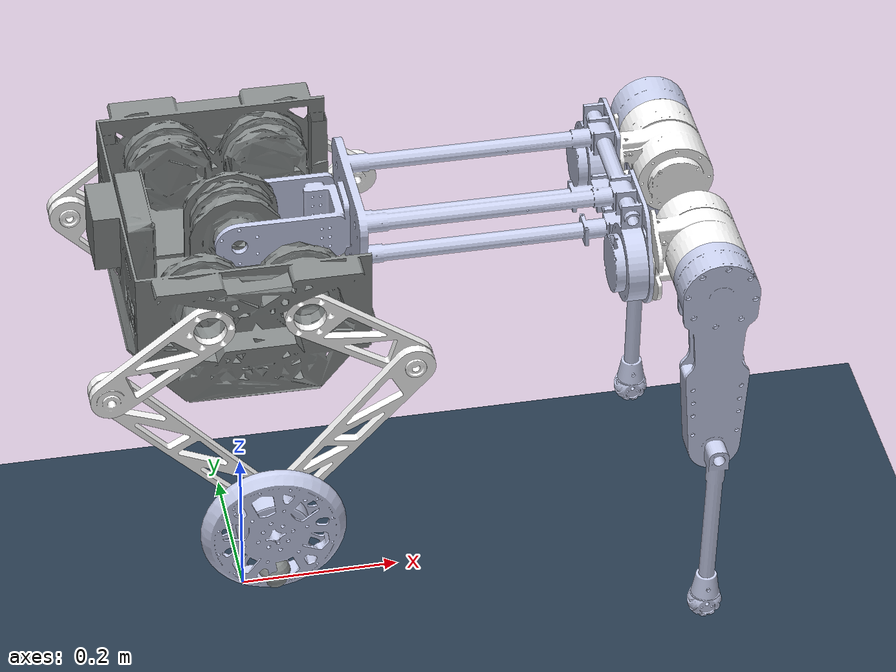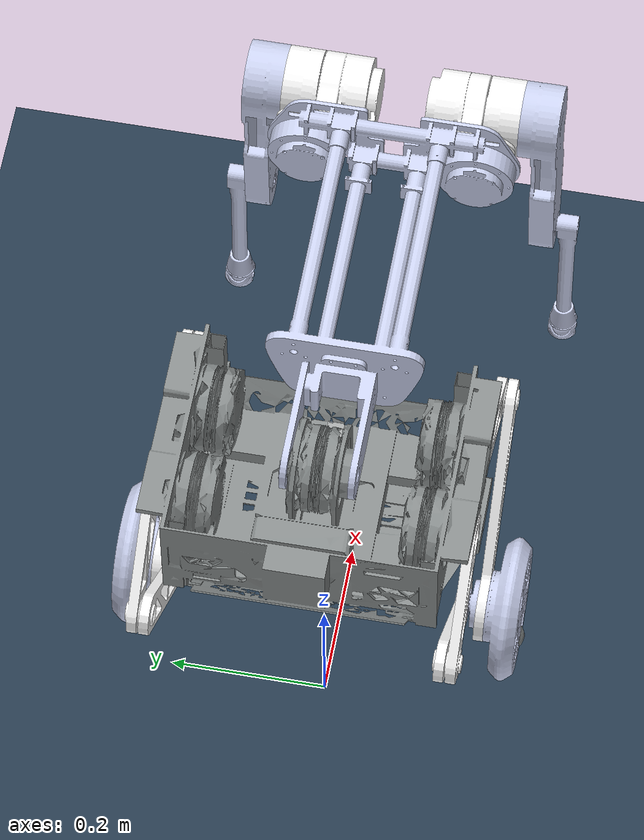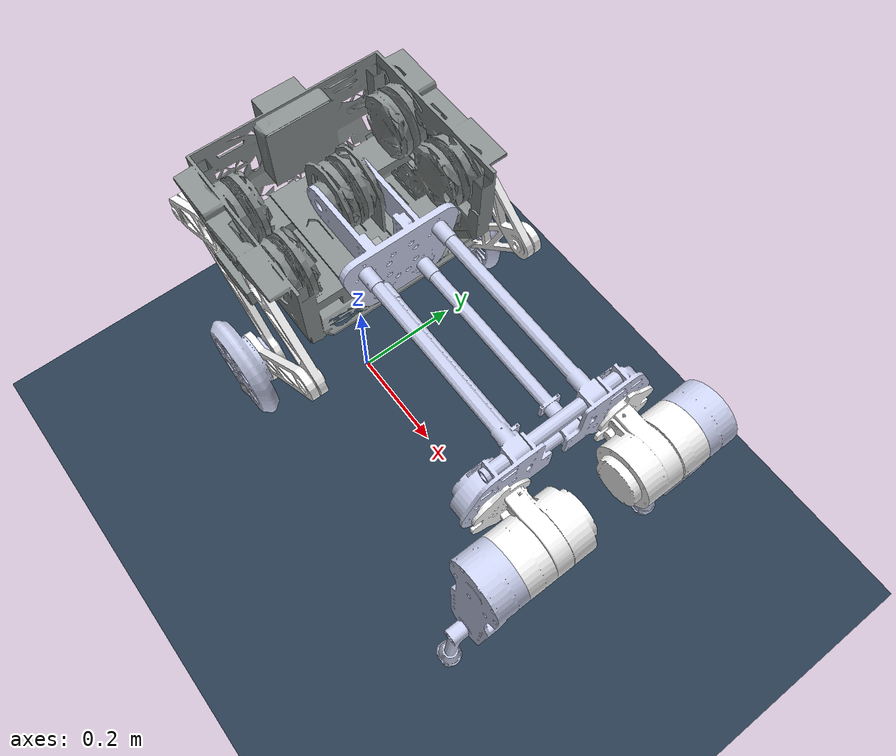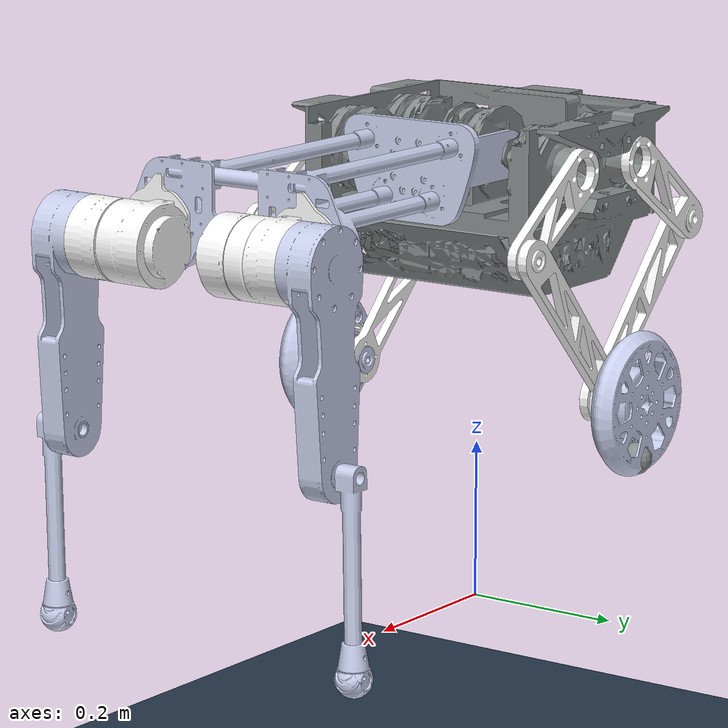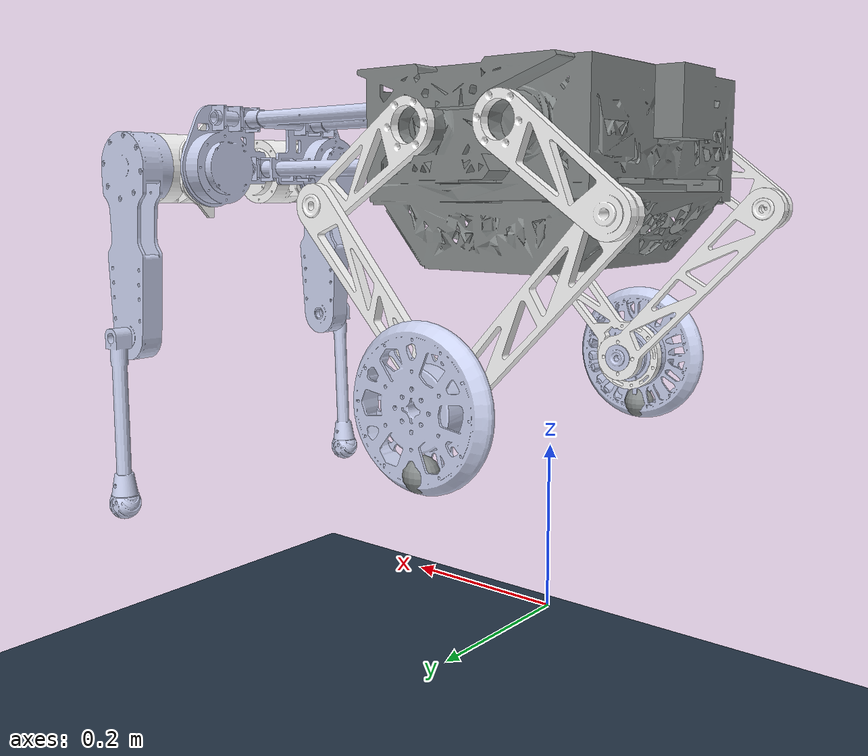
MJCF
<mujoco model="Wheel_legged_description">
  <compiler angle="radian" meshdir="../meshes_display/" autolimits="true"/>
    <size njmax="500" nconmax="100" />
    <option timestep="0.001" iterations="50" solver="PGS" gravity="0 0 -9.81" noslip_iterations="20">
    </option>
    <default>
      <geom contype="1" conaffinity="1" condim="1" solref="0.005 1"/>
    </default>
    <visual>
      <quality shadowsize="4096"/>
      <global realtime="1"/>
    </visual>
    <asset>
      <texture type="skybox" builtin="gradient" rgb1="0.3 0.5 0.7" rgb2="0 0 0" width="512" height="512"/>
      <texture name="texplane" type="2d" builtin="checker" rgb1=".2 .3 .4" rgb2=".1 0.15 0.2"
        width="512" height="512" mark="cross" markrgb=".8 .8 .8"/>
      <texture name="texplane2" type="2d" builtin="checker" rgb1="1 0.3137 0.1843" rgb2="0.0 0.30196 0.38039"
        width="512" height="512" mark="cross" markrgb=".8 .8 .8"/>

      <material name="matplane" reflectance="0." texture="texplane" texrepeat="1 1" texuniform="true"/>
      <material name="matplane2" reflectance="0.1" texture="texplane2" texrepeat="1 1" texuniform="true"/>
      <material name='obstacle'  rgba='0.9 0.6 0.2 1'/>
      <material name='visualgeom'  rgba='0.5 0.9 0.2 1'/>
      <material name='visualgeom2'  rgba='0.5 0.9 0.2 1'/>
    	<mesh name="base_link" file="base_link.STL"/>
   	  <mesh name="waist_Link" file="waist_Link.STL"/>
    	<mesh name="Labad_Link" file="Labad_Link.STL"/>
    	<mesh name="Lhip_Link" file="Lhip_Link.STL"/>
    	<mesh name="Lknee_Link" file="Lknee_Link.STL"/>
    	<mesh name="Rabad_Link" file="Rabad_Link.STL"/>
    	<mesh name="Rhip_Link" file="Rhip_Link.STL"/>
    	<mesh name="Rknee_Link" file="Rknee_Link.STL"/>
    	<mesh name="LF_hip_Link" file="LF_hip_Link.STL"/>
    	<mesh name="LF_knee_Link" file="LF_knee_Link.STL"/>
    	<mesh name="Lwheel_Link" file="Lwheel_Link.STL"/>
    	<mesh name="LB_hip_Link" file="LB_hip_Link.STL"/>
    	<mesh name="LB_knee_Link" file="LB_knee_Link.STL"/>
    	<mesh name="RF_hip_Link" file="RF_hip_Link.STL"/>
    	<mesh name="RF_knee_Link" file="RF_knee_Link.STL"/>
    	<mesh name="Rwheel_Link" file="Rwheel_Link.STL"/>
    	<mesh name="RB_hip_Link" file="RB_hip_Link.STL"/>
    	<mesh name="RB_knee_Link" file="RB_knee_Link.STL"/>
  </asset>
  <worldbody>
    <light directional="false" cutoff="60" exponent="1" diffuse=".5 .5 .5" specular=".1 .1 .1" pos="0.5 0.1 0.8" dir="-0.5 -0.1 -0.8"/>
    <geom name="ground" type="plane" size="0 0 1" pos="0.01 0 -0.285" quat="1 0 0 0" material="matplane" condim="3" contype="15" conaffinity='0' friction="1.2 0.8 0.8"/>
    <body name="base_link" pos="0 0 0.5">
      <freejoint/>
      <inertial pos="0.1015927041891579 0.00071509554661818 0.0289337663641155" quat="1 0 0 0" mass="16.8740" diaginertia="0.29867 0.48858 0.65671 " />
      <geom type="mesh" contype="0" conaffinity="0" group="1" density="0" rgba="0.529412 0.54902 0.54902 1" mesh="base_link"/>
      <geom size="0.14 0.165 0.1065" pos="0 0 0.02" type="box" rgba="0.529412 0.54902 0.54902 0"/>
      <geom size="0.0075 0.0075 0.002" type="box" contype="0" conaffinity="0" group="1" density="0"/>
      <geom pos="0.000107024 0.00535894 0.0709154" type="mesh" contype="0" conaffinity="0" group="1" density="0" rgba="0.792157 0.819608 0.933333 1" mesh="waist_Link"/>
      <geom size="0.28 0.12 0.05" pos="0.280107 0.00535894 0.0709154" type="box" rgba="0.792157 0.819608 0.933333 0"/>
      <site name="base_imu" pos="0.08 0 0.02" type="box" size="0.01 0.01 0.01" rgba="0.8 0.8 0.8 0.5"/>
      <body name="LF_hip_Link" pos="0.060111 0.191429 0.0692325" gravcomp="0">
        <inertial pos="0.0615859 -0.000613058 -0.0390776" quat="0.32077 0.657207 0.586274 0.348524" mass="0.177077" diaginertia="0.00070071 0.000647868 6.14221e-05"/>
        <joint name="Joint_LFhip" pos="0 0 0" axis="0 1 0" limited="true" range="-0.93 0.45" damping="0.01" frictionloss="0.01" armature="0.01"/>
        <geom type="mesh" contype="0" conaffinity="0" group="1" density="0" rgba="1 1 1 1" mesh="LF_hip_Link"/>
        <geom size="0.1 0.01 0.025" pos="0.06 0 -0.04" quat="0.955336 0 0.29552 0" type="box" rgba="1 1 1 0"/>
        <body name="LF_knee_Link" pos="0.124002 0.00618 -0.0847037" gravcomp="0">
          <inertial pos="-0.097663 0.0140473 -0.104843" quat="-0.259341 0.657831 0.657831 -0.259341" mass="0.280637" diaginertia="0.00225442 0.00220135 5.84701e-05"/>
          <joint name="Joint_LFknee" pos="0 0 0" axis="0 1 0" limited="true" range="-0.685 1.04"/>
          <geom type="mesh" contype="0" conaffinity="0" group="1" density="0" rgba="1 1 1 1" mesh="LF_knee_Link"/>
          <geom type="mesh" rgba="1 1 1 1" mesh="LF_knee_Link"/>
          <geom size="0.02" pos="-0.18 0.04 -0.27" contype="0" conaffinity="0" group="1" density="0" rgba="0.529412 0.54902 0.54902 1"/>
          <geom size="0.02" pos="-0.18 0.04 -0.27" rgba="0.529412 0.54902 0.54902 1"/>
            <body name="Lwheel_Link" pos="-0.17978 0.0402 -0.20147" gravcomp="0">
              <inertial pos="0.00010458 -0.011045 -3.7866e-05" quat="0.707107 0 0 0.707107" mass="0.825401" diaginertia="0.00186 0.00145 0.00145"/>
              <geom type="mesh" contype="0" conaffinity="0" group="1" density="0" rgba="0.792157 0.819608 0.933333 1" mesh="Lwheel_Link"/>
              <geom size="0.09 0.02" quat="0.707388 0.706825 0 0" type="cylinder" rgba="0.792157 0.819608 0.933333 0"/>
            </body>
        </body>
      </body>
      <body name="LB_hip_Link" pos="-0.0598897 0.194429 0.0686073" gravcomp="0">
        <inertial pos="-0.0590005 -0.00341205 -0.038742" quat="0.657207 0.32077 0.348524 0.586274" mass="0.18" diaginertia="0.00070071 0.000647868 6.14221e-05"/>
        <joint name="Joint_LBhip" pos="0 0 0" axis="0 1 0" limited="true" range="-0.45 0.93" damping="0.01" frictionloss="0.01" armature="0.01"/>
        <geom type="mesh" contype="0" conaffinity="0" group="1" density="0" rgba="1 1 1 1" mesh="LB_hip_Link"/>
        <geom type="mesh" rgba="1 1 1 1" mesh="LB_hip_Link"/>
        <body name="LB_knee_Link" pos="-0.120708 -0.00732 -0.0887404" gravcomp="0">
          <inertial pos="0.091245 -0.00700003 -0.097323" quat="0.657831 -0.259341 -0.259341 0.657831" mass="0.225121" diaginertia="0.00225442 0.00220135 5.84701e-05"/>
          <joint name="Joint_LBknee" pos="0 0 0" axis="0 1 0" limited="true" range="-1.04 0.685"/>
          <geom type="mesh" contype="0" conaffinity="0" group="1" density="0" rgba="1 1 1 1" mesh="LB_knee_Link"/>
          <geom type="mesh" rgba="1 1 1 1" mesh="LB_knee_Link"/>
        </body>
      </body>
      <body name="RF_hip_Link" pos="0.0601109 -0.186391 0.0686016" gravcomp="0">
        <inertial pos="0.0720854 0.000793069 -0.0477055" quat="0.32077 0.657207 0.586274 0.348524" mass="0.177077" diaginertia="0.00070071 0.000647868 6.14221e-05"/>
        <joint name="Joint_RFhip" pos="0 0 0" axis="0 1 0" limited="true" range="-0.93 0.45" damping="0.01" frictionloss="0.01" armature="0.01"/>
        <geom type="mesh" contype="0" conaffinity="0" group="1" density="0" rgba="1 1 1 1" mesh="RF_hip_Link"/>
        <geom type="mesh" rgba="1 1 1 1" mesh="RF_hip_Link"/>
        <body name="RF_knee_Link" pos="0.124791 -0.006 -0.0829024" gravcomp="0">
          <inertial pos="-0.097368 -0.0100073 -0.105112" quat="-0.259341 0.657831 0.657831 -0.259341" mass="0.280637" diaginertia="0.00225442 0.00220135 5.84701e-05"/>
          <joint name="Joint_RFknee" pos="0 0 0" axis="0 1 0" limited="true" range="-0.685 1.04"/>
          <geom type="mesh" contype="0" conaffinity="0" group="1" density="0" rgba="1 1 1 1" mesh="RF_knee_Link"/>
          <geom type="mesh" rgba="1 1 1 1" mesh="RF_knee_Link"/>
          <geom size="0.02" pos="-0.18 -0.04 -0.27" contype="0" conaffinity="0" group="1" density="0" rgba="0.529412 0.54902 0.54902 1"/>
          <geom size="0.02" pos="-0.18 -0.04 -0.27" rgba="0.529412 0.54902 0.54902 1"/>
            <body name="Rwheel_Link" pos="-0.180075 -0.0402 -0.20123" gravcomp="0">
              <inertial pos="0.00010458 0.0110455 -3.7866e-05" quat="0.707107 0 0 0.707107" mass="0.825401" diaginertia="0.00186 0.00145 0.00145"/>
              <geom type="mesh" contype="0" conaffinity="0" group="1" density="0" rgba="0.792157 0.819608 0.933333 1" mesh="Rwheel_Link"/>
              <geom size="0.09 0.02" quat="0.707388 0.706825 0 0" type="cylinder" rgba="0.792157 0.819608 0.933333 0"/>
          </body>
        </body>
      </body>
      <body name="RB_hip_Link" pos="-0.0598897 -0.189391 0.0692432" gravcomp="0">
        <inertial pos="-0.061051 0.00059178 -0.046907" quat="0.657207 0.32077 0.348524 0.586274" mass="0.18" diaginertia="0.00070071 0.000647868 6.14221e-05"/>
        <joint name="Joint_RBhip" pos="0 0 0" axis="0 1 0" limited="true" range="-0.45 0.93" damping="0.01" frictionloss="0.01" armature="0.01"/>
        <geom type="mesh" contype="0" conaffinity="0" group="1" density="0" rgba="1 1 1 1" mesh="RB_hip_Link"/>
        <geom type="mesh" rgba="1 1 1 1" mesh="RB_hip_Link"/>
        <body name="RB_knee_Link" pos="-0.121051 0.0075 -0.0889105" gravcomp="0">
          <inertial pos="0.0919309 0.00700003 -0.0966663" quat="0.656351 -0.263066 -0.263066 0.656351" mass="0.225121" diaginertia="0.00225442 0.00220135 5.84701e-05"/>
          <joint name="Joint_RBknee" pos="0 0 0" axis="0 1 0" limited="true" range="-1.04 0.685"/>
          <geom type="mesh" contype="0" conaffinity="0" group="1" density="0" rgba="1 1 1 1" mesh="RB_knee_Link"/>
          <geom type="mesh" rgba="1 1 1 1" mesh="RB_knee_Link"/>
        </body>
      </body>
      <body name="Labad_Link" pos="0.56018 0.105785 0.0331767" gravcomp="0">
        <inertial pos="-0.00595687 -0.0107941 -0.000171966" quat="0.506339 0.492985 -0.502862 0.497711" mass="1.27" diaginertia="0.00270 0.00284 0.00162"/>
        <joint name="Joint_Labad" pos="0 0 0" axis="1 0 0" limited="true" range="-0.424 1.04" damping="0.01" frictionloss="0.01" armature="0.01"/>
        <geom type="mesh" contype="0" conaffinity="0" group="1" density="0" rgba="1 1 1 1" mesh="Labad_Link"/>
        <geom size="0.048 0.065" quat="0.707388 0.706825 0 0" type="cylinder" rgba="0.792157 0.819608 0.933333 0"/>
        <body name="Lhip_Link" pos="-0.000174443 0.0776923 0.00019391" gravcomp="0">
          <inertial pos="-0.000723234 -0.00460421 -0.0865058" quat="0.705137 0.0170159 -0.013058 0.708747" mass="1.02" diaginertia="0.00994 0.00953 0.00079"/>
          <joint name="Joint_Lhip" pos="0 0 0" axis="0 1 0" limited="true" range="-0.503 1.41" damping="0.01" frictionloss="0.01" armature="0.01"/>
          <geom type="mesh" contype="0" conaffinity="0" group="1" density="0" rgba="0.792157 0.819608 0.933333 1" mesh="Lhip_Link"/>
          <geom size="0.05 0.02 0.115" pos="0 0 -0.115" type="box" rgba="0.792157 0.819608 0.933333 0"/>
          <body name="Lknee_Link" pos="-0.00165862 0.031407 -0.230048" gravcomp="0">
            <inertial pos="-0.00190486 -4.3168e-06 -0.12757" quat="0.560944 0.0139705 -0.00976398 0.827678" mass="0.24" diaginertia="0.00159 0.00159 0.00003"/>
            <joint name="Joint_Lknee" pos="0 0 0" axis="0 1 0" limited="true" range="-3.14 0" damping="0.01" frictionloss="0.01" armature="0.01"/>
            <geom type="mesh" contype="0" conaffinity="0" group="1" density="0" rgba="0.792157 0.819608 0.933333 1" mesh="Lknee_Link"/>
            <geom size="0.02 0.125" pos="0 0 -0.125" type="cylinder" rgba="0.792157 0.819608 0.933333 0"/>
          </body>
        </body>
      </body>
      <body name="Rabad_Link" pos="0.56008 -0.10775 0.0316767" gravcomp="0">
        <inertial pos="-0.00605932 0.0107735 0.000594366" quat="0.506339 0.492985 -0.502862 0.497711" mass="1.27" diaginertia="0.00270 0.00284 0.00162"/>
        <joint name="Joint_Rabad" pos="0 0 0" axis="1 0 0" limited="true" range="-1.04 0.424" damping="0.01" frictionloss="0.01" armature="0.01"/>
        <geom type="mesh" contype="0" conaffinity="0" group="1" density="0" rgba="1 1 1 1" mesh="Rabad_Link"/>
        <geom size="0.048 0.065" quat="0.707388 0.706825 0 0" type="cylinder" rgba="0.792157 0.819608 0.933333 0"/>
        <body name="Rhip_Link" pos="-7.14114e-05 -0.0767142 0.000899685" gravcomp="0">
          <inertial pos="-0.000328071 0.00342242 -0.0865492" quat="0.708814 -0.0138294 0.0177784 0.705035" mass="1.02" diaginertia="0.00994 0.00953 0.00079"/>
          <joint name="Joint_Rhip" pos="0 0 0" axis="0 1 0" limited="true" range="-0.503 1.41" damping="0.01" frictionloss="0.01" armature="0.01"/>
          <geom type="mesh" contype="0" conaffinity="0" group="1" density="0" rgba="0.792157 0.819608 0.933333 1" mesh="Rhip_Link"/>
          <geom size="0.05 0.02 0.115" pos="0 0 -0.115" type="box" rgba="0.792157 0.819608 0.933333 0"/>
          <body name="Rknee_Link" pos="-0.0011405 -0.0323891 -0.229762" gravcomp="0">
            <inertial pos="-0.00519458 -0.000601366 -0.127715" quat="0.924397 -0.00799365 0.0202102 0.380812" mass="0.24" diaginertia="0.00159 0.00159 0.00003"/>
            <joint name="Joint_Rknee" pos="0 0 0" axis="0 1 0" limited="true" range="-3.14 0" damping="0.01" frictionloss="0.01" armature="0.01"/>
            <geom type="mesh" contype="0" conaffinity="0" group="1" density="0" rgba="0.792157 0.819608 0.933333 1" mesh="Rknee_Link"/>
            <geom size="0.02 0.125" pos="0 0 -0.125" type="cylinder" rgba="0.792157 0.819608 0.933333 0"/>
          </body>
        </body>
      </body>
    </body>
  </worldbody>

  <equality>
    <connect body1="LF_knee_Link" body2="LB_knee_Link" anchor="-0.211059 0.01 -0.183995" solimp="0.9 0.95 0.001 0.1 10" solref="0.01 0.1"/>
    <connect body1="RF_knee_Link" body2="RB_knee_Link" anchor="-0.211059 0.01 -0.183995" solimp="0.9 0.95 0.001 0.1 10" solref="0.01 0.1"/>
  </equality>

  <actuator>
    <motor name="A8112-1" joint="Joint_LFhip" gear="1" ctrllimited="true" ctrlrange="-100 100"/>
    <motor name="A8112-2" joint="Joint_LBhip" gear="1" ctrllimited="true" ctrlrange="-100 100"/>
    <motor name="A8112-3" joint="Joint_RFhip" gear="1" ctrllimited="true" ctrlrange="-100 100"/>
    <motor name="A8112-4" joint="Joint_RBhip" gear="1" ctrllimited="true" ctrlrange="-100 100"/>
    <motor name="DM1" joint="Joint_Labad" gear="1" ctrllimited="true" ctrlrange="-50 50"/>
    <motor name="DM2" joint="Joint_Lhip"  gear="1" ctrllimited="true" ctrlrange="-50 50"/>
    <motor name="DM3" joint="Joint_Lknee" gear="1" ctrllimited="true" ctrlrange="-50 50"/>
    <motor name="DM4" joint="Joint_Rabad" gear="1" ctrllimited="true" ctrlrange="-50 50"/>
    <motor name="DM5" joint="Joint_Rhip"  gear="1" ctrllimited="true" ctrlrange="-50 50"/>
    <motor name="DM6" joint="Joint_Rknee" gear="1" ctrllimited="true" ctrlrange="-50 50"/>
  </actuator>

  <sensor>
    <jointpos name="Lf_motor_pos"   joint="Joint_LFhip"/>
    <jointpos name="Lb_motor_pos"   joint="Joint_LBhip"/>
    <jointpos name="Rf_motor_pos"   joint="Joint_RFhip"/>
    <jointpos name="Rb_motor_pos"   joint="Joint_RBhip"/>

    <jointpos name="Labad_pos"      joint="Joint_Labad"  />
    <jointpos name="Lhip_pos"       joint="Joint_Lhip"   />
    <jointpos name="Lknee_pos"      joint="Joint_Lknee"  />
    <jointpos name="Rabad_pos"      joint="Joint_Rabad"  />
    <jointpos name="Rhip_pos"       joint="Joint_Rhip"   />
    <jointpos name="Rknee_pos"      joint="Joint_Rknee"  />

    <jointvel name="Lf_motor_vel"   joint="Joint_LFhip"/>
    <jointvel name="Lb_motor_vel"   joint="Joint_LBhip"/>
    <jointvel name="Rf_motor_vel"   joint="Joint_RFhip"/>
    <jointvel name="Rb_motor_vel"   joint="Joint_RBhip"/>

    <jointvel name="Labad_vel"      joint="Joint_Labad" />
    <jointvel name="Lhip_vel"       joint="Joint_Lhip"  />
    <jointvel name="Lknee_vel"      joint="Joint_Lknee" />
    <jointvel name="Rabad_vel"      joint="Joint_Rabad" />
    <jointvel name="Rhip_vel"       joint="Joint_Rhip"  />
    <jointvel name="Rknee_vel"      joint="Joint_Rknee" />

    <accelerometer name="BodyAcc" site="base_imu"/>
    <velocimeter name="BodyVel" site="base_imu"/>
    <gyro name="BodyGyro" site="base_imu"/>
    <framepos name="BodyPos" objtype="site" objname="base_imu"/>
    <framequat name="BodyQuat" objtype="site" objname="base_imu"/>
  </sensor>

</mujoco>
